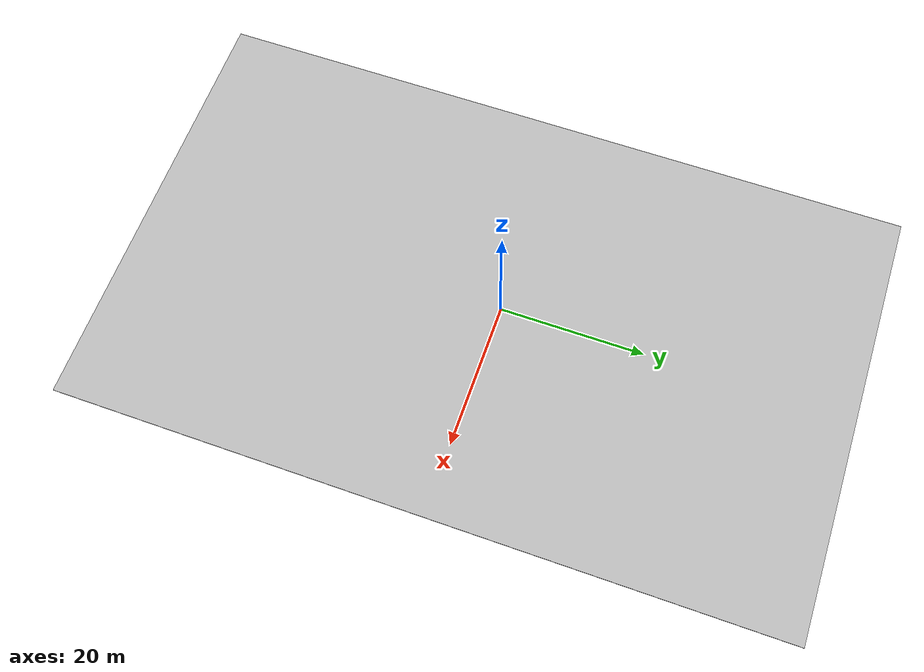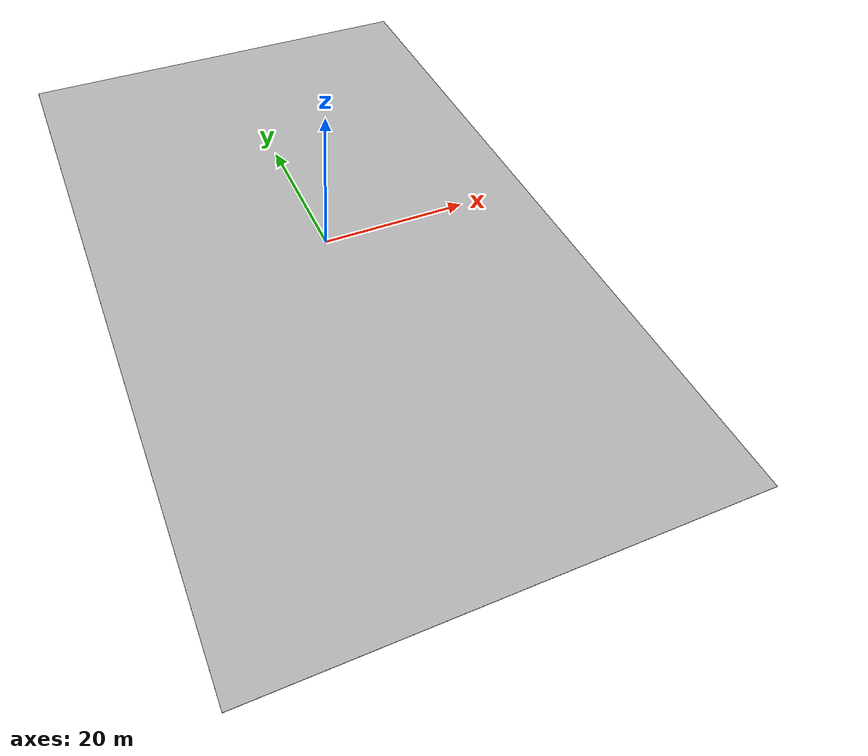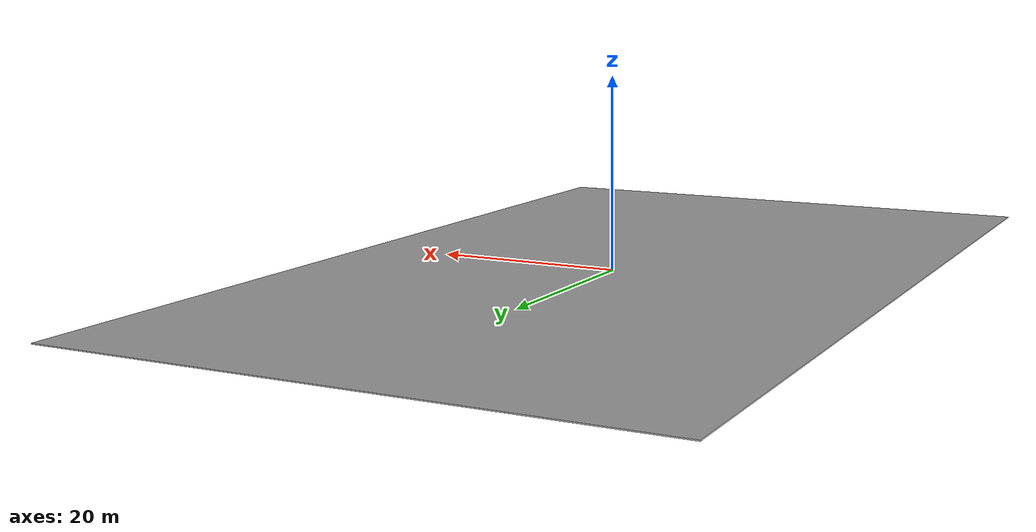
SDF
<?xml version="1.0" ?>
<sdf version="1.6">
  <model name="map">
    <static>true</static>
    <link name="link">
      <pose>0 -1.5 0 0 0 0</pose>
      <collision name="collision">
        <geometry>
          <box>
            <size>60 100 0.1</size>
          </box>
        </geometry>
      </collision>
      <visual name="visual">
        <geometry>
          <box>
            <size>60 100 0.1</size>
          </box>
        </geometry>
        <material>
          <script>
            <uri>model://map/materials/scripts</uri>
            <uri>model://map/materials/textures</uri>
            <name>Map</name>
          </script>
        </material>
      </visual>
    </link>
  </model>
</sdf>
